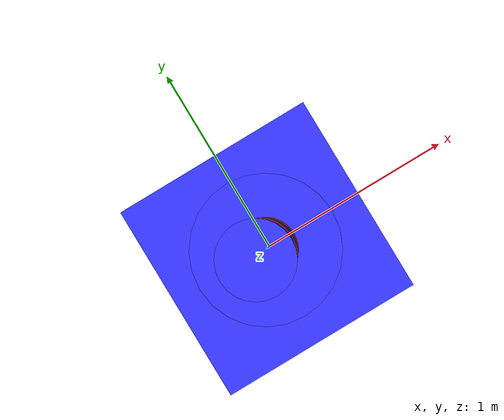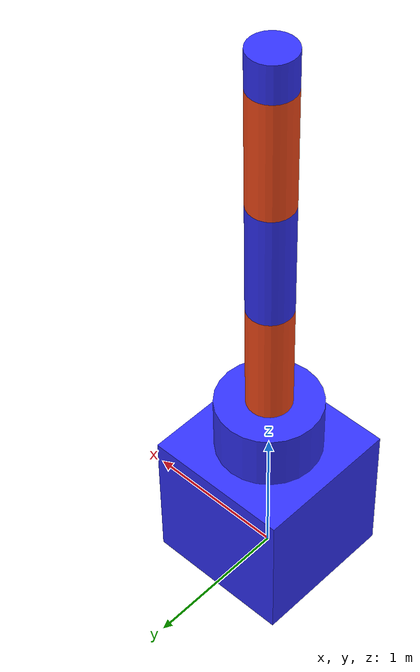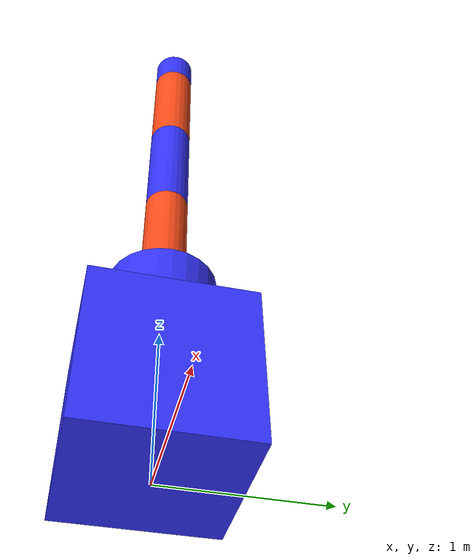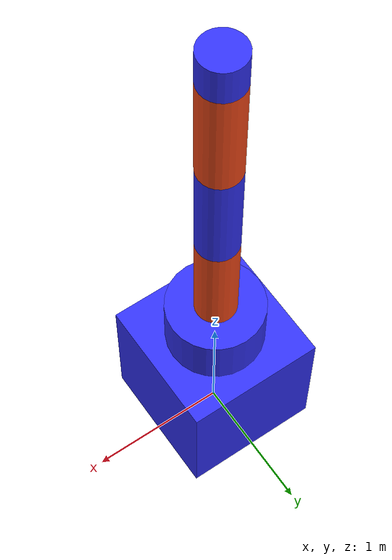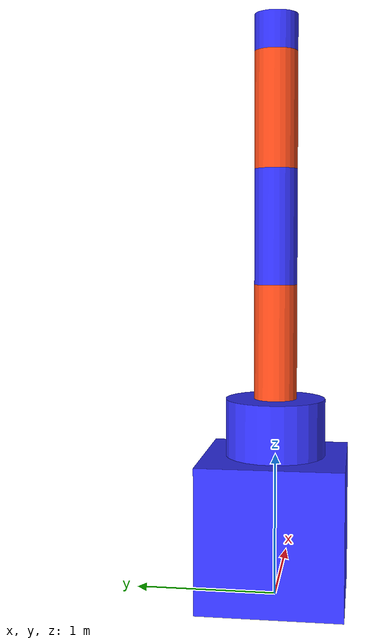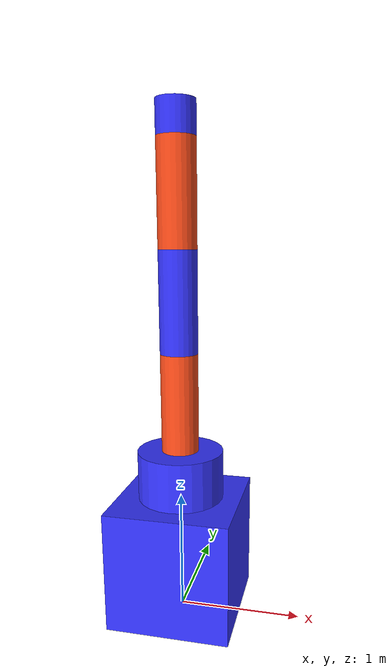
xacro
<?xml version="1.0"?>

<robot name="my_rob1" xmlns:xacro="http://www.ros.org/wiki/xacro">

    <xacro:include filename = "$(find my_robot_description)/urdf/links_joints.xacro" />
    <xacro:include filename = "$(find my_robot_description)/urdf/robot_material.xacro" />

    <xacro:m_link_box name="base_link"
                origin_rpy = "0 0 0" origin_xyz = "0 0 0.5"
                size = "1 1 1"
                mass = "200"
                ixx = "170.6 " ixy = "0" ixz = "0"
                iyy = "170.6" iyz = "0"
                izz = "170.6"/>

    <xacro:m_joint name="base_link__link_01" type = "revolute"
                axis_xyz = "0 0 1"
                origin_rpy = "0 0 0" origin_xyz = "0 0 1"
                parent = "base_link" child = "link_01"
                limit_e = "1000" limit_l = "-3.14" limit_u = "3.14" limit_v = "0.5" />

    <xacro:m_link_cylinder name = "link_01"
                origin_rpy = "0 0 0" origin_xyz = "0 0 0.2"
                length = "0.4" radius = "0.35"
                mass = "1"
                ixx = "13.6 " ixy = "0" ixz = "0"
                iyy = "13.6" iyz = "0"
                izz = "9.6"
                color = "blue"/>

    <xacro:m_joint name="link_01__link_02"  type = "revolute"
                axis_xyz = "0 1 0"
                origin_rpy = "0 0 0" origin_xyz = "0 0 0.4"
                parent = "link_01" child = "link_02"
                limit_e = "1000" limit_l = "-1" limit_u = "1" limit_v = "0.5" />

    <xacro:m_link_cylinder name = "link_02"
                origin_rpy = "0 0 0" origin_xyz = "0 0 0.4"
                length = "0.8" radius = "0.15"
                mass = "1"
                ixx = "12.6 " ixy = "0" ixz = "0"
                iyy = "12.6" iyz = "0"
                izz = "0.6"
                color = "orange"/>

    <xacro:m_joint name="link_02__link_03"  type = "revolute"
                axis_xyz = "0 1 0"
                origin_rpy = "0 0 0" origin_xyz = "0 0 0.8"
                parent = "link_02" child = "link_03"
                limit_e = "1000" limit_l = "-1" limit_u = "1" limit_v = "0.5" />

    <xacro:m_link_cylinder name = "link_03"
                origin_rpy = "0 0 0" origin_xyz = "0 0 0.4"
                length = "0.8" radius = "0.15"
                mass = "1"
                ixx = "12.6 " ixy = "0" ixz = "0"
                iyy = "12.6" iyz = "0"
                izz = "0.6"
                color = "blue"/>

    <xacro:m_joint name="link_03__link_04"  type = "revolute"
                axis_xyz = "0 1 0"
                origin_rpy = "0 0 0" origin_xyz = "0 0 0.8"
                parent = "link_03" child = "link_04"
                limit_e = "1000" limit_l = "-1" limit_u = "1" limit_v = "0.5" />

    <xacro:m_link_cylinder name = "link_04"
                origin_rpy = "0 0 0" origin_xyz = "0 0 0.4"
                length = "0.8" radius = "0.15"
                mass = "1"
                ixx = "12.6 " ixy = "0" ixz = "0"
                iyy = "12.6" iyz = "0"
                izz = "0.6"
                color = "orange"/>

    <xacro:m_joint name="link_04__link_05"  type = "revolute"
                axis_xyz = "0 0 1"
                origin_rpy = "0 0 0" origin_xyz = "0 0 0.8"
                parent = "link_04" child = "link_05"
                limit_e = "1000" limit_l = "-3.14" limit_u = "3.14" limit_v = "0.5" />

    <xacro:m_link_cylinder name = "link_05"
                origin_rpy = "0 0 0" origin_xyz = "0 0 0.125"
                length = "0.25" radius = "0.15"
                mass = "1"
                ixx = "0.47" ixy = "0" ixz = "0"
                iyy = "0.47" iyz = "0"
                izz = "0.2"
                color = "blue"/>

    <gazebo>
        <plugin name = "gazebo_ros_control" filename = "libgazebo_ros_control.so">
        </plugin>
    </gazebo>
</robot>

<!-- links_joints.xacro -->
<robot xmlns:xacro="http://www.ros.org/wiki/xacro">

    <xacro:macro name = "m_joint" params= "name type axis_xyz limit_e limit_l limit_u limit_v origin_rpy origin_xyz parent child">
        <joint name = "${name}" type = "${type}">
            <axis xyz = "${axis_xyz}" />
            <limit effort = "${limit_e}" lower = "${limit_l}" upper = "${limit_u}" velocity = "${limit_v}" />
            <origin rpy = "${origin_rpy}" xyz = "${origin_xyz}" />
            <parent link = "${parent}" />
            <child link = "${child}" />
        </joint>
        <transmission name = "trans_${name}">
            <type> transmission_interface/SimpleTransmission </type>
            <joint name = "${name}" >
                <hardwareInterface> hardware_interface/EffortJointInterface </hardwareInterface>
            </joint>
            <actuator name = "motor_${name}">
                <hardwareInterface> hardware_interface/EffortJointInterface </hardwareInterface>
                <mechanicalReduction> 1 </mechanicalReduction>
            </actuator>
        </transmission>

    </xacro:macro>

    <xacro:macro name="m_link_box" params= "name origin_rpy origin_xyz size mass ixx ixy ixz iyy iyz izz">
        <link name = "${name}">
            <inertial>
                <mass value ="${mass}" />
                <origin rpy = "${origin_rpy}" xyz = "${origin_xyz}" />
                <inertia ixx = "${ixx}" ixy = "${ixy}" iyz = "${iyz}" ixz = "${ixz}" iyy = "${iyy}" izz = "${izz}"/>
            </inertial>
            <collision>
                <origin rpy = "${origin_rpy}" xyz = "${origin_xyz}" />
                <geometry>
                    <box size = "${size}" />
                </geometry>
            </collision>
            <visual>
                <origin rpy = "${origin_rpy}" xyz = "${origin_xyz}" />
                <geometry>
                    <box size = "${size}" />
                </geometry>
                <material name="blue" />

            </visual>
        </link>
    </xacro:macro>

    <xacro:macro name="m_link_cylinder" params= "name origin_xyz origin_rpy radius length mass ixx ixy ixz iyy iyz izz color">
        <link name = "${name}">
            <inertial>
                <mass value ="${mass}" />
                <origin rpy = "${origin_rpy}" xyz = "${origin_xyz}" />
                <inertia ixx = "${ixx}" ixy = "${ixy}" iyz = "${iyz}" ixz = "${ixz}" iyy = "${iyy}" izz = "${izz}"/>
            </inertial>
            <collision>
                <origin rpy = "${origin_rpy}" xyz = "${origin_xyz}" />
                <geometry>
                    <cylinder length = "${length}" radius = "${radius}" />
                </geometry>
            </collision>
            <visual>
                <origin rpy = "${origin_rpy}" xyz = "${origin_xyz}" />
                <geometry>
                    <cylinder length = "${length}" radius = "${radius}" />
                </geometry>
                <material name="${color}" />

            </visual>
        </link>
    </xacro:macro>

</robot>

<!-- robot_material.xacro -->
<robot xmlns:xacro="http://www.ros.org/wiki/xacro" >

    <!-- Specify some colours -->

    <material name="white">
        <color rgba="1 1 1 1"/>
    </material>

    <material name="orange">
        <color rgba="1 0.3 0.1 1"/>
    </material>

    <material name="blue">
        <color rgba="0.2 0.2 1 1"/>
    </material>

     <gazebo reference="link_01">
        <material>Gazebo/Green</material>
    </gazebo>

    <gazebo reference="link_02">
        <material>Gazebo/Blue</material>
    </gazebo>

    <gazebo reference="link_03">
        <material>Gazebo/Orange</material>
    </gazebo>

    <gazebo reference="link_04">
        <material>Gazebo/Green</material>
    </gazebo>

    <gazebo reference="link_05">
        <material>Gazebo/Blue</material>
    </gazebo>

</robot>
